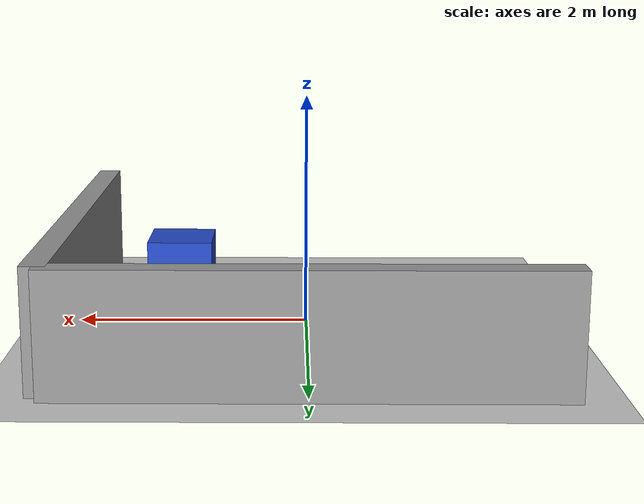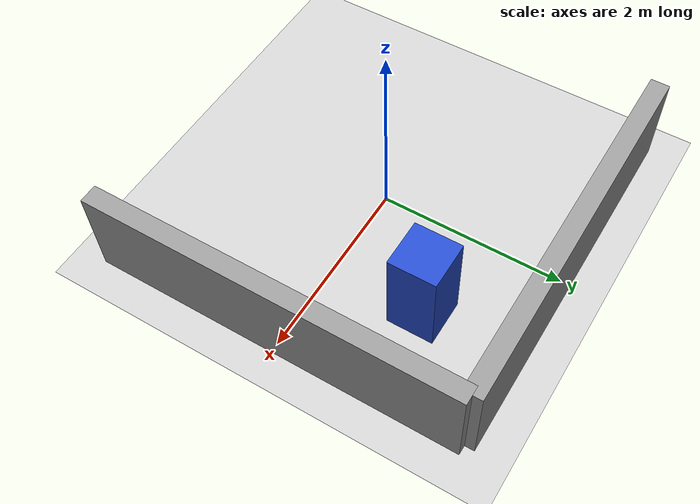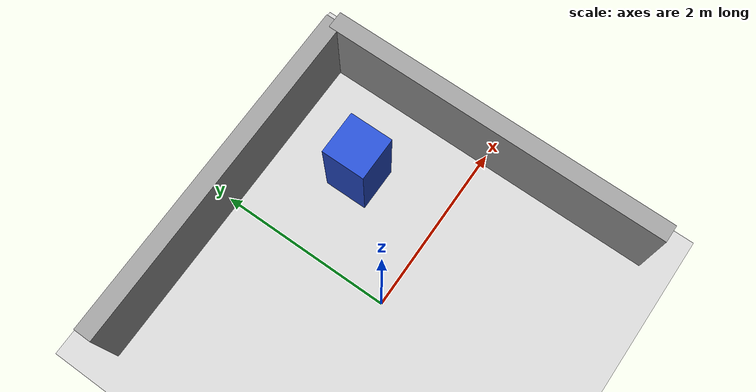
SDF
<?xml version="1.0" ?>
<sdf version="1.6">
  <world name="test_room">
    <!-- Basic Light & Ground -->
    <include>
      <uri>model://sun</uri>
    </include>
    <include>
      <uri>model://ground_plane</uri>
    </include>

    <!-- Simple Box Obstacles -->
    <model name="wall_1">
      <pose>2 0 0.5 0 0 0</pose>
      <static>true</static>
      <link name="link">
        <collision name="collision">
          <geometry><box><size>0.2 4 1</size></box></geometry>
        </collision>
        <visual name="visual">
          <geometry><box><size>0.2 4 1</size></box></geometry>
          <material><script><name>Gazebo/Grey</name></script></material>
        </visual>
      </link>
    </model>

    <model name="wall_2">
      <pose>0 2 0.5 0 0 0</pose>
      <static>true</static>
      <link name="link">
        <collision name="collision">
          <geometry><box><size>4 0.2 1</size></box></geometry>
        </collision>
        <visual name="visual">
          <geometry><box><size>4 0.2 1</size></box></geometry>
          <material><script><name>Gazebo/Grey</name></script></material>
        </visual>
      </link>
    </model>

    <model name="obstacle_box">
      <pose>1 1 0.5 0 0 0</pose>
      <static>true</static>
      <link name="link">
        <collision name="collision">
          <geometry><box><size>0.5 0.5 1</size></box></geometry>
        </collision>
        <visual name="visual">
          <geometry><box><size>0.5 0.5 1</size></box></geometry>
          <material><script><name>Gazebo/Blue</name></script></material>
        </visual>
      </link>
    </model>

  </world>
</sdf>
